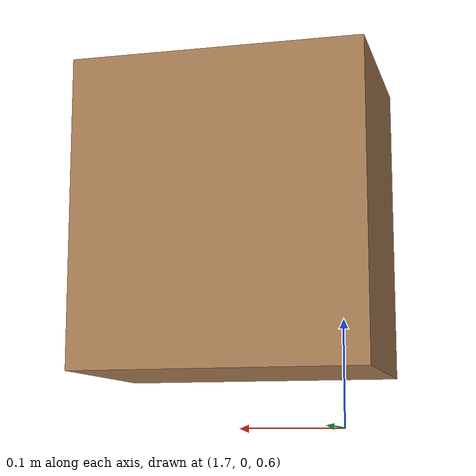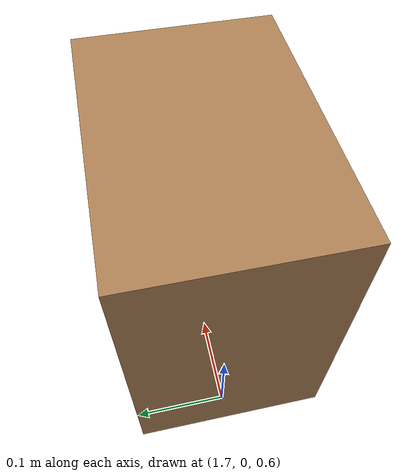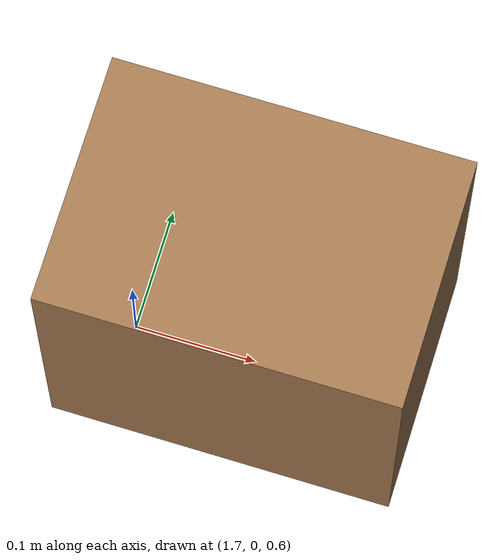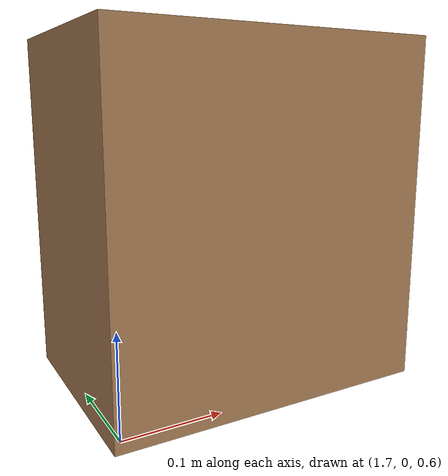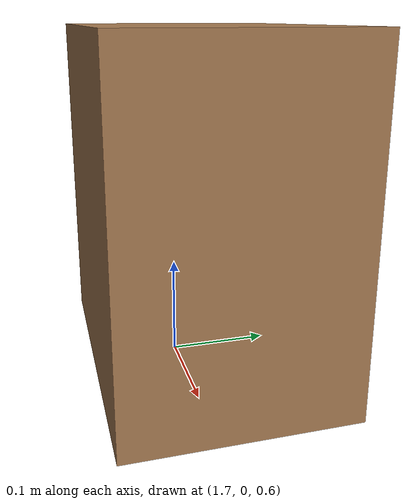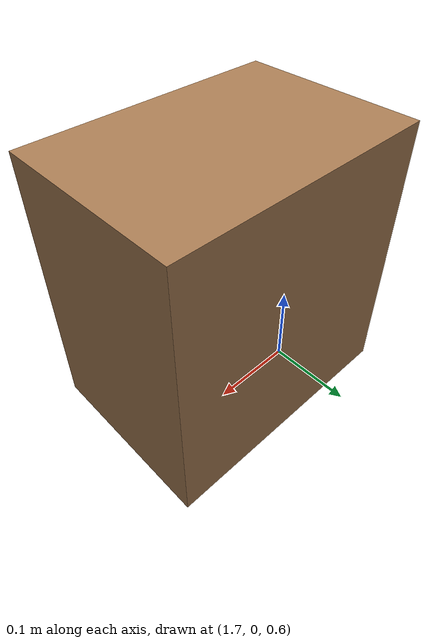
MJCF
<mujoco model="carton_liftable">

  <worldbody>
    <body name="carton" pos="1.8 0 0.796">
      <freejoint/>
      <geom name="carton_box" type="box" size="0.1375 0.0955 0.146" mass="0.220"
            rgba="0.65 0.48 0.32 1" friction="1.0 0.005 0.0001" group="0"/>
    </body>
  </worldbody>

</mujoco>
